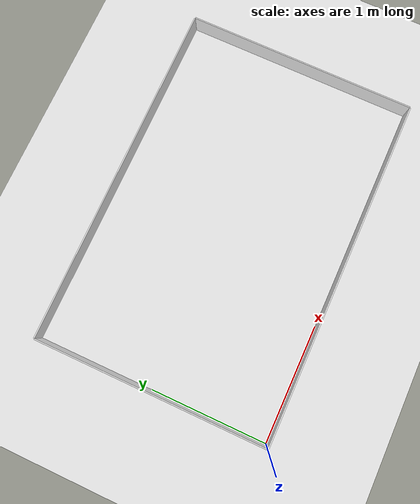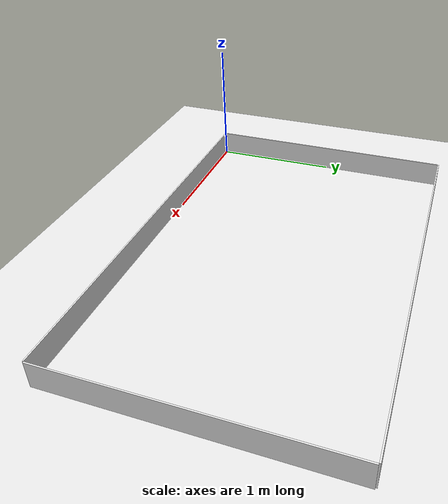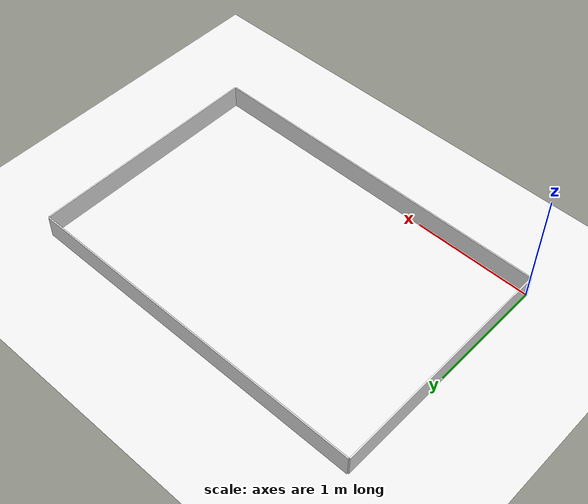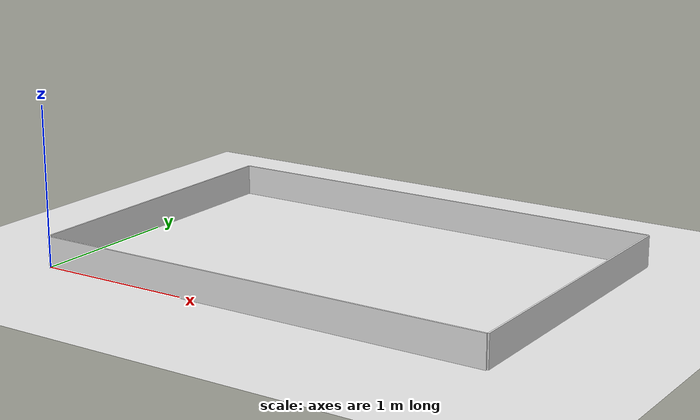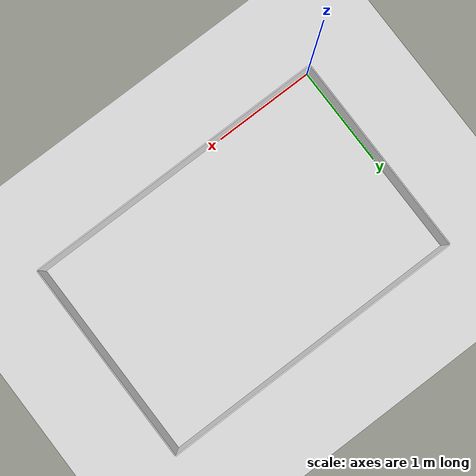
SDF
<sdf version="1.6">
 <world name="default">
  <light name="sun" type="directional">
   <pose>0 0 10 0 -0 0</pose>
   <diffuse>0.8 0.8 0.8 1</diffuse>
   <specular>0.2 0.2 0.2 1</specular>
   <attenuation>
    <range>1000</range>
    <constant>0.9</constant>
    <linear>0.01</linear>
    <quadratic>0.001</quadratic>
   </attenuation>
   <direction>-0.5 0.1 -0.9</direction>
  </light>
  <model name="ground_plane">
   <pose>1.5 1 0 0 -0 0</pose>
   <static>1</static>
   <link name="link">
    <collision name="collision">
     <geometry><plane><normal>0 0 1</normal><size>3 2</size></plane></geometry>
     <surface>
      <contact><collide_bitmask>65535</collide_bitmask></contact>
      <friction><ode><mu>100</mu><mu2>50</mu2></ode></friction>
     </surface>
    </collision>
    <visual name="visual">
     <cast_shadows>0</cast_shadows>
     <geometry><plane><normal>0 0 1</normal><size>3 2</size></plane></geometry>
     <material>
      <script><uri>file://media/materials/scripts/gazebo.material</uri><name>Gazebo/White</name></script>
     </material>
    </visual>
   </link>
  </model>
  <gravity>0 0 -9.8</gravity>
  <magnetic_field>6e-06 2.3e-05 -4.2e-05</magnetic_field>
  <atmosphere type="adiabatic"/>
  <physics name="default_physics" default="0" type="ode">
   <max_step_size>0.001</max_step_size>
   <real_time_factor>1</real_time_factor>
   <real_time_update_rate>1000</real_time_update_rate>
  </physics>
  <scene><ambient>0.4 0.4 0.4 1</ambient><background>0.7 0.7 0.7 1</background><shadows>1</shadows></scene>
  <spherical_coordinates>
   <surface_model>EARTH_WGS84</surface_model>
   <latitude_deg>0</latitude_deg>
   <longitude_deg>0</longitude_deg>
   <elevation>0</elevation>
   <heading_deg>0</heading_deg>
  </spherical_coordinates>
  <model name="wall_west">
   <static>1</static>
   <pose>1.5 -0.005 0.1 0 0 0</pose>
   <link name="wall_west::link">
    <inertial>
     <mass>1</mass>
     <inertia>
      <ixx>0.166667</ixx>
      <ixy>0</ixy>
      <ixz>0</ixz>
      <iyy>0.166667</iyy>
      <iyz>0</iyz>
      <izz>0.166667</izz>
     </inertia>
     <pose>1.5 -0.005 0.1 0 0 0</pose>
    </inertial>
    <collision name="collision"><geometry><box><size>3 0.01 0.2</size></box></geometry></collision>
    <visual name="visual">
     <geometry><box><size>3 0.01 0.2</size></box></geometry>
     <material>
      <script><name>Gazebo/White</name><uri>file://media/materials/scripts/gazebo.material</uri></script>
     </material>
    </visual>
   </link>
  </model>
  <model name="wall_east">
   <static>1</static>
   <pose>1.5 2.005 0.1 0 0 0</pose>
   <link name="wall_east::link">
    <inertial>
     <mass>1</mass>
     <inertia>
      <ixx>0.166667</ixx>
      <ixy>0</ixy>
      <ixz>0</ixz>
      <iyy>0.166667</iyy>
      <iyz>0</iyz>
      <izz>0.166667</izz>
     </inertia>
     <pose>1.5 2.005 0.1 0 0 0</pose>
    </inertial>
    <collision name="collision"><geometry><box><size>3 0.01 0.2</size></box></geometry></collision>
    <visual name="visual">
     <geometry><box><size>3 0.01 0.2</size></box></geometry>
     <material>
      <script><name>Gazebo/White</name><uri>file://media/materials/scripts/gazebo.material</uri></script>
     </material>
    </visual>
   </link>
  </model>
  <model name="wall_north">
   <static>1</static>
   <pose>-0.005 1 0.1 0 0 0</pose>
   <link name="wall_north::link">
    <inertial>
     <mass>1</mass>
     <inertia>
      <ixx>0.166667</ixx>
      <ixy>0</ixy>
      <ixz>0</ixz>
      <iyy>0.166667</iyy>
      <iyz>0</iyz>
      <izz>0.166667</izz>
     </inertia>
     <pose>-0.005 1 0.1 0 0 0</pose>
    </inertial>
    <collision name="collision"><geometry><box><size>0.01 2 0.2</size></box></geometry></collision>
    <visual name="visual">
     <geometry><box><size>0.01 2 0.2</size></box></geometry>
     <material>
      <script><name>Gazebo/White</name><uri>file://media/materials/scripts/gazebo.material</uri></script>
     </material>
    </visual>
   </link>
  </model>
  <model name="wall_south">
   <static>1</static>
   <pose>3.005 1 0.1 0 0 0</pose>
   <link name="wall_south::link">
    <inertial>
     <mass>1</mass>
     <inertia>
      <ixx>0.166667</ixx>
      <ixy>0</ixy>
      <ixz>0</ixz>
      <iyy>0.166667</iyy>
      <iyz>0</iyz>
      <izz>0.166667</izz>
     </inertia>
     <pose>-0.005 1 0.1 0 0 0</pose>
    </inertial>
    <collision name="collision"><geometry><box><size>0.01 2 0.2</size></box></geometry></collision>
    <visual name="visual">
     <geometry><box><size>0.01 2 0.2</size></box></geometry>
     <material>
      <script><name>Gazebo/White</name><uri>file://media/materials/scripts/gazebo.material</uri></script>
     </material>
    </visual>
   </link>
  </model>
 </world>
</sdf>
